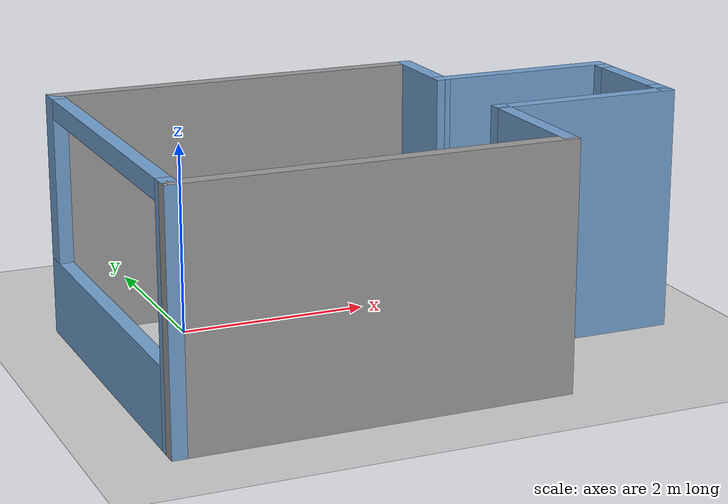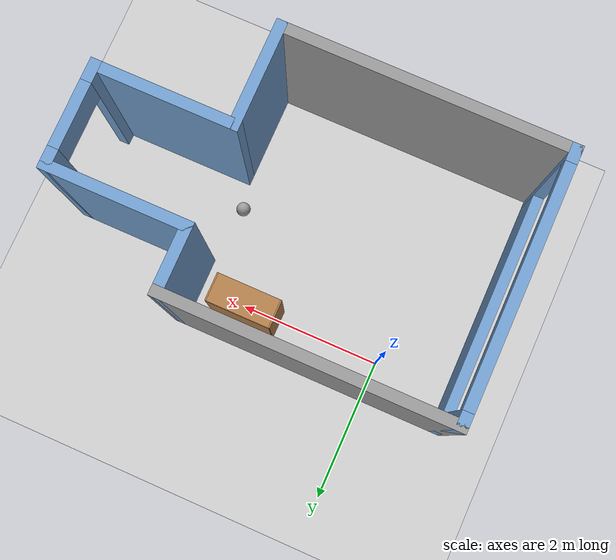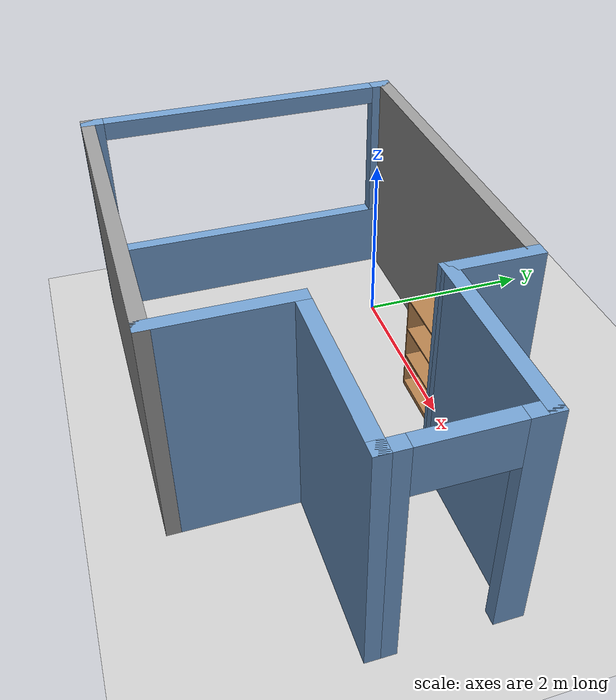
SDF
<sdf version="1.6">
 <world name="default">
  <plugin name="hello" filename="libhello.so"/>
  <light name="sun" type="directional">
   <pose>0 0 10 0 -0 0</pose>
   <diffuse>0.8 0.8 0.8 1</diffuse>
   <specular>0.2 0.2 0.2 1</specular>
   <attenuation>
    <range>1000</range>
    <constant>0.9</constant>
    <linear>0.01</linear>
    <quadratic>0.001</quadratic>
   </attenuation>
   <direction>-0.5 0.1 -0.9</direction>
  </light>
  <model name="ground_plane">
   <static>1</static>
   <link name="link">
    <collision name="collision">
     <geometry><plane><normal>0 0 1</normal><size>100 100</size></plane></geometry>
     <surface>
      <contact><collide_bitmask>65535</collide_bitmask></contact>
      <friction><ode><mu>100</mu><mu2>50</mu2></ode></friction>
     </surface>
    </collision>
    <visual name="visual">
     <cast_shadows>0</cast_shadows>
     <geometry><plane><normal>0 0 1</normal><size>100 100</size></plane></geometry>
     <material>
      <script><uri>file://media/materials/scripts/gazebo.material</uri><name>Gazebo/Grey</name></script>
     </material>
    </visual>
   </link>
  </model>
  <gravity>0 0 -9.8</gravity>
  <magnetic_field>6e-06 2.3e-05 -4.2e-05</magnetic_field>
  <atmosphere type="adiabatic"/>
  <physics name="default_physics" default="0" type="ode">
   <max_step_size>0.001</max_step_size>
   <real_time_factor>1</real_time_factor>
   <real_time_update_rate>1000</real_time_update_rate>
  </physics>
  <scene><ambient>0.4 0.4 0.4 1</ambient><background>0.7 0.7 0.7 1</background><shadows>1</shadows></scene>
  <audio><device>default</device></audio>
  <spherical_coordinates>
   <surface_model>EARTH_WGS84</surface_model>
   <latitude_deg>0</latitude_deg>
   <longitude_deg>0</longitude_deg>
   <elevation>0</elevation>
   <heading_deg>0</heading_deg>
  </spherical_coordinates>
  <model name="model">
   <pose>1.73331 -1.2889 0 0 -0 0</pose>
   <link name="Wall_15">
    <collision name="Wall_15_Collision">
     <geometry><box><size>4 0.15 2.5</size></box></geometry>
     <pose>0 0 1.25 0 -0 0</pose>
    </collision>
    <visual name="Wall_15_Visual">
     <pose>0 0 1.25 0 -0 0</pose>
     <geometry><box><size>4 0.15 2.5</size></box></geometry>
     <material>
      <script><uri>file://media/materials/scripts/gazebo.material</uri><name>Gazebo/Grey</name></script>
      <ambient>1 1 1 1</ambient>
     </material>
     <meta><layer>0</layer></meta>
    </visual>
    <pose>-0.925 1.775 0 0 -0 0</pose>
   </link>
   <link name="Wall_16">
    <collision name="Wall_16_Collision">
     <geometry><box><size>1 0.15 2.5</size></box></geometry>
     <pose>0 0 1.25 0 -0 0</pose>
    </collision>
    <visual name="Wall_16_Visual">
     <pose>0 0 1.25 0 -0 0</pose>
     <geometry><box><size>1 0.15 2.5</size></box></geometry>
     <material>
      <script><uri>file://media/materials/scripts/gazebo.material</uri><name>Gazebo/Grey</name></script>
      <ambient>0.447059 0.623529 0.811765 1</ambient>
     </material>
     <meta><layer>0</layer></meta>
    </visual>
    <pose>1 1.35 0 0 -0 -1.5708</pose>
   </link>
   <link name="Wall_17">
    <collision name="Wall_17_Collision">
     <geometry><box><size>2 0.15 2.5</size></box></geometry>
     <pose>0 0 1.25 0 -0 0</pose>
    </collision>
    <visual name="Wall_17_Visual">
     <pose>0 0 1.25 0 -0 0</pose>
     <geometry><box><size>2 0.15 2.5</size></box></geometry>
     <material>
      <script><uri>file://media/materials/scripts/gazebo.material</uri><name>Gazebo/Grey</name></script>
      <ambient>0.447059 0.623529 0.811765 1</ambient>
     </material>
     <meta><layer>0</layer></meta>
    </visual>
    <pose>1.925 0.925 0 0 -0 0</pose>
   </link>
   <link name="Wall_18">
    <pose>2.85 0.25 0 0 -0 -1.5708</pose>
    <visual name="Wall_18_Visual_0">
     <pose>-0.6 0 1.25 0 -0 0</pose>
     <geometry><box><size>0.3 0.15 2.5</size></box></geometry>
     <material>
      <script><uri>file://media/materials/scripts/gazebo.material</uri><name>Gazebo/Grey</name></script>
      <ambient>0.447059 0.623529 0.811765 1</ambient>
     </material>
     <meta><layer>0</layer></meta>
    </visual>
    <collision name="Wall_18_Collision_0">
     <geometry><box><size>0.3 0.15 2.5</size></box></geometry>
     <pose>-0.6 0 1.25 0 -0 0</pose>
    </collision>
    <visual name="Wall_18_Visual_1">
     <pose>0.6 0 1.25 0 -0 0</pose>
     <geometry><box><size>0.3 0.15 2.5</size></box></geometry>
     <material>
      <script><uri>file://media/materials/scripts/gazebo.material</uri><name>Gazebo/Grey</name></script>
      <ambient>0.447059 0.623529 0.811765 1</ambient>
     </material>
     <meta><layer>0</layer></meta>
    </visual>
    <collision name="Wall_18_Collision_1">
     <geometry><box><size>0.3 0.15 2.5</size></box></geometry>
     <pose>0.6 0 1.25 0 -0 0</pose>
    </collision>
    <visual name="Wall_18_Visual_2">
     <pose>-0 0 2.25 0 -0 0</pose>
     <geometry><box><size>0.9 0.15 0.5</size></box></geometry>
     <material>
      <script><uri>file://media/materials/scripts/gazebo.material</uri><name>Gazebo/Grey</name></script>
      <ambient>0.447059 0.623529 0.811765 1</ambient>
     </material>
     <meta><layer>0</layer></meta>
    </visual>
    <collision name="Wall_18_Collision_2">
     <geometry><box><size>0.9 0.15 0.5</size></box></geometry>
     <pose>-0 0 2.25 0 -0 0</pose>
    </collision>
   </link>
   <link name="Wall_19">
    <collision name="Wall_19_Collision">
     <geometry><box><size>2 0.15 2.5</size></box></geometry>
     <pose>0 0 1.25 0 -0 0</pose>
    </collision>
    <visual name="Wall_19_Visual">
     <pose>0 0 1.25 0 -0 0</pose>
     <geometry><box><size>2 0.15 2.5</size></box></geometry>
     <material>
      <script><uri>file://media/materials/scripts/gazebo.material</uri><name>Gazebo/Grey</name></script>
      <ambient>0.447059 0.623529 0.811765 1</ambient>
     </material>
     <meta><layer>0</layer></meta>
    </visual>
    <pose>1.925 -0.425 0 0 -0 3.14159</pose>
   </link>
   <link name="Wall_20">
    <collision name="Wall_20_Collision">
     <geometry><box><size>1.5 0.15 2.5</size></box></geometry>
     <pose>0 0 1.25 0 -0 0</pose>
    </collision>
    <visual name="Wall_20_Visual">
     <pose>0 0 1.25 0 -0 0</pose>
     <geometry><box><size>1.5 0.15 2.5</size></box></geometry>
     <material>
      <script><uri>file://media/materials/scripts/gazebo.material</uri><name>Gazebo/Grey</name></script>
      <ambient>0.447059 0.623529 0.811765 1</ambient>
     </material>
     <meta><layer>0</layer></meta>
    </visual>
    <pose>1 -1.1 0 0 -0 -1.5708</pose>
   </link>
   <link name="Wall_21">
    <collision name="Wall_21_Collision">
     <geometry><box><size>4 0.15 2.5</size></box></geometry>
     <pose>0 0 1.25 0 -0 0</pose>
    </collision>
    <visual name="Wall_21_Visual">
     <pose>0 0 1.25 0 -0 0</pose>
     <geometry><box><size>4 0.15 2.5</size></box></geometry>
     <material>
      <script><uri>file://media/materials/scripts/gazebo.material</uri><name>Gazebo/Grey</name></script>
      <ambient>1 1 1 1</ambient>
     </material>
     <meta><layer>0</layer></meta>
    </visual>
    <pose>-0.925 -1.775 0 0 -0 3.14159</pose>
   </link>
   <link name="Wall_22">
    <pose>-2.85 -0 0 0 -0 1.5708</pose>
    <visual name="Wall_22_Visual_0">
     <pose>-1.725 0 1.25 0 -0 0</pose>
     <geometry><box><size>0.25 0.15 2.5</size></box></geometry>
     <material>
      <script><uri>file://media/materials/scripts/gazebo.material</uri><name>Gazebo/Grey</name></script>
      <ambient>0.447059 0.623529 0.811765 1</ambient>
     </material>
     <meta><layer>0</layer></meta>
    </visual>
    <collision name="Wall_22_Collision_0">
     <geometry><box><size>0.25 0.15 2.5</size></box></geometry>
     <pose>-1.725 0 1.25 0 -0 0</pose>
    </collision>
    <visual name="Wall_22_Visual_1">
     <pose>0.125 0 0.4 0 -0 0</pose>
     <geometry><box><size>3.45 0.15 0.8</size></box></geometry>
     <material>
      <script><uri>file://media/materials/scripts/gazebo.material</uri><name>Gazebo/Grey</name></script>
      <ambient>0.447059 0.623529 0.811765 1</ambient>
     </material>
     <meta><layer>0</layer></meta>
    </visual>
    <collision name="Wall_22_Collision_1">
     <geometry><box><size>3.45 0.15 0.8</size></box></geometry>
     <pose>0.125 0 0.4 0 -0 0</pose>
    </collision>
    <visual name="Wall_22_Visual_2">
     <pose>1.725 0 1.65 0 -0 0</pose>
     <geometry><box><size>0.25 0.15 1.7</size></box></geometry>
     <material>
      <script><uri>file://media/materials/scripts/gazebo.material</uri><name>Gazebo/Grey</name></script>
      <ambient>0.447059 0.623529 0.811765 1</ambient>
     </material>
     <meta><layer>0</layer></meta>
    </visual>
    <collision name="Wall_22_Collision_2">
     <geometry><box><size>0.25 0.15 1.7</size></box></geometry>
     <pose>1.725 0 1.65 0 -0 0</pose>
    </collision>
    <visual name="Wall_22_Visual_3">
     <pose>0 0 2.4 0 -0 0</pose>
     <geometry><box><size>3.2 0.15 0.2</size></box></geometry>
     <material>
      <script><uri>file://media/materials/scripts/gazebo.material</uri><name>Gazebo/Grey</name></script>
      <ambient>0.447059 0.623529 0.811765 1</ambient>
     </material>
     <meta><layer>0</layer></meta>
    </visual>
    <collision name="Wall_22_Collision_3">
     <geometry><box><size>3.2 0.15 0.2</size></box></geometry>
     <pose>0 0 2.4 0 -0 0</pose>
    </collision>
   </link>
   <static>1</static>
  </model>
  <model name="bookshelf">
   <static>1</static>
   <link name="link">
    <inertial><mass>1</mass></inertial>
    <collision name="back">
     <pose>0 0.005 0.6 0 -0 0</pose>
     <geometry><box><size>0.9 0.01 1.2</size></box></geometry>
    </collision>
    <visual name="visual1">
     <pose>0 0.005 0.6 0 -0 0</pose>
     <geometry><box><size>0.9 0.01 1.2</size></box></geometry>
     <material>
      <script><uri>file://media/materials/scripts/gazebo.material</uri><name>Gazebo/Wood</name></script>
     </material>
    </visual>
    <collision name="left_side">
     <pose>0.45 -0.195 0.6 0 -0 0</pose>
     <geometry><box><size>0.02 0.4 1.2</size></box></geometry>
    </collision>
    <visual name="visual2">
     <pose>0.45 -0.195 0.6 0 -0 0</pose>
     <geometry><box><size>0.02 0.4 1.2</size></box></geometry>
     <material>
      <script><uri>file://media/materials/scripts/gazebo.material</uri><name>Gazebo/Wood</name></script>
     </material>
    </visual>
    <collision name="right_side">
     <pose>-0.45 -0.195 0.6 0 -0 0</pose>
     <geometry><box><size>0.02 0.4 1.2</size></box></geometry>
    </collision>
    <visual name="visual3">
     <pose>-0.45 -0.195 0.6 0 -0 0</pose>
     <geometry><box><size>0.02 0.4 1.2</size></box></geometry>
     <material>
      <script><uri>file://media/materials/scripts/gazebo.material</uri><name>Gazebo/Wood</name></script>
     </material>
    </visual>
    <collision name="bottom">
     <pose>0 -0.195 0.03 0 -0 0</pose>
     <geometry><box><size>0.88 0.4 0.06</size></box></geometry>
    </collision>
    <visual name="visual4">
     <pose>0 -0.195 0.03 0 -0 0</pose>
     <geometry><box><size>0.88 0.4 0.06</size></box></geometry>
     <material>
      <script><uri>file://media/materials/scripts/gazebo.material</uri><name>Gazebo/Wood</name></script>
     </material>
    </visual>
    <collision name="top">
     <pose>0 -0.195 1.19 0 -0 0</pose>
     <geometry><box><size>0.88 0.4 0.02</size></box></geometry>
    </collision>
    <visual name="visual5">
     <pose>0 -0.195 1.19 0 -0 0</pose>
     <geometry><box><size>0.88 0.4 0.02</size></box></geometry>
     <material>
      <script><uri>file://media/materials/scripts/gazebo.material</uri><name>Gazebo/Wood</name></script>
     </material>
    </visual>
    <collision name="low_shelf">
     <pose>0 -0.195 0.43 0 -0 0</pose>
     <geometry><box><size>0.88 0.4 0.02</size></box></geometry>
    </collision>
    <visual name="visual6">
     <pose>0 -0.195 0.43 0 -0 0</pose>
     <geometry><box><size>0.88 0.4 0.02</size></box></geometry>
     <material>
      <script><uri>file://media/materials/scripts/gazebo.material</uri><name>Gazebo/Wood</name></script>
     </material>
    </visual>
    <collision name="high_shelf">
     <pose>0 -0.195 0.8 0 -0 0</pose>
     <geometry><box><size>0.88 0.4 0.02</size></box></geometry>
    </collision>
    <visual name="visual7">
     <pose>0 -0.195 0.8 0 -0 0</pose>
     <geometry><box><size>0.88 0.4 0.02</size></box></geometry>
     <material>
      <script><uri>file://media/materials/scripts/gazebo.material</uri><name>Gazebo/Wood</name></script>
     </material>
    </visual>
   </link>
   <pose>1.91739 0.237025 0 0 -0 0</pose>
  </model>
  <model name="my_ball">
   <link name="link_0">
    <inertial>
     <mass>1</mass>
     <inertia><ixx>0.1</ixx><ixy>0</ixy><ixz>0</ixz><iyy>0.1</iyy><iyz>0</iyz><izz>0.1</izz></inertia>
    </inertial>
    <visual name="visual">
     <geometry><sphere><radius>0.1</radius></sphere></geometry>
     <material>
      <lighting>1</lighting>
      <script><uri>file://media/materials/scripts/gazebo.material</uri><name>Gazebo/Grey</name></script>
      <shader type="vertex"><normal_map>__default__</normal_map></shader>
      <ambient>1 1 1 1</ambient>
      <diffuse>1 1 1 1</diffuse>
      <specular>1 1 0.8 1</specular>
      <emissive>1 1 1 1</emissive>
     </material>
    </visual>
    <collision name="collision">
     <geometry><sphere><radius>0.1</radius></sphere></geometry>
     <surface>
      <friction>
       <ode><mu>1</mu><mu2>1</mu2><fdir1>0 0 0</fdir1><slip1>0</slip1><slip2>0</slip2></ode>
       <torsional>
        <coefficient>1</coefficient>
        <patch_radius>0</patch_radius>
        <surface_radius>0</surface_radius>
        <use_patch_radius>1</use_patch_radius>
        <ode><slip>0</slip></ode>
       </torsional>
      </friction>
      <bounce><restitution_coefficient>0</restitution_coefficient><threshold>1e+06</threshold></bounce>
      <contact>
       <collide_without_contact>0</collide_without_contact>
       <collide_without_contact_bitmask>1</collide_without_contact_bitmask>
       <collide_bitmask>1</collide_bitmask>
       <ode>
        <soft_cfm>0</soft_cfm>
        <soft_erp>0.2</soft_erp>
        <kp>1e+13</kp>
        <kd>1</kd>
        <max_vel>0.01</max_vel>
        <min_depth>0</min_depth>
       </ode>
       <bullet>
        <split_impulse>1</split_impulse>
        <split_impulse_penetration_threshold>-0.01</split_impulse_penetration_threshold>
        <soft_cfm>0</soft_cfm>
        <soft_erp>0.2</soft_erp>
        <kp>1e+13</kp>
        <kd>1</kd>
       </bullet>
      </contact>
     </surface>
    </collision>
   </link>
   <static>0</static>
   <pose>2.58277 -1.2603 0.1 0 -0 0</pose>
  </model>
  <plugin filename="libcollision_map_creator.so" name="collision_map_creator"/>
 </world>
</sdf>
